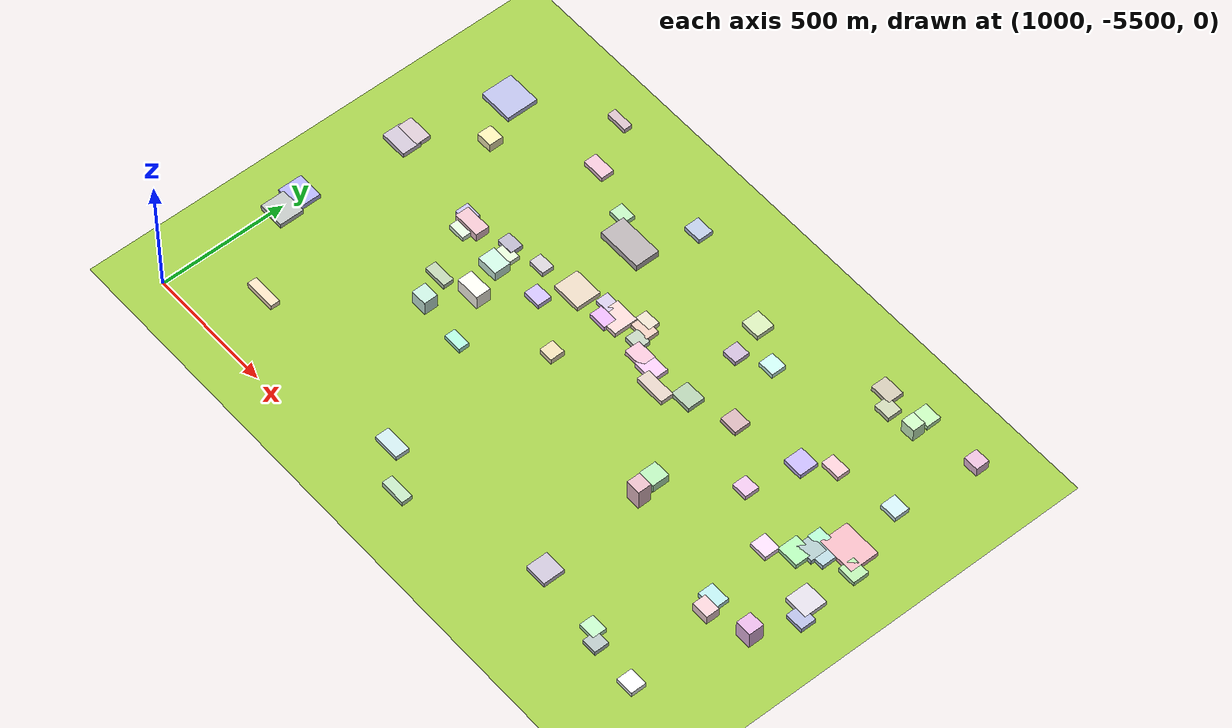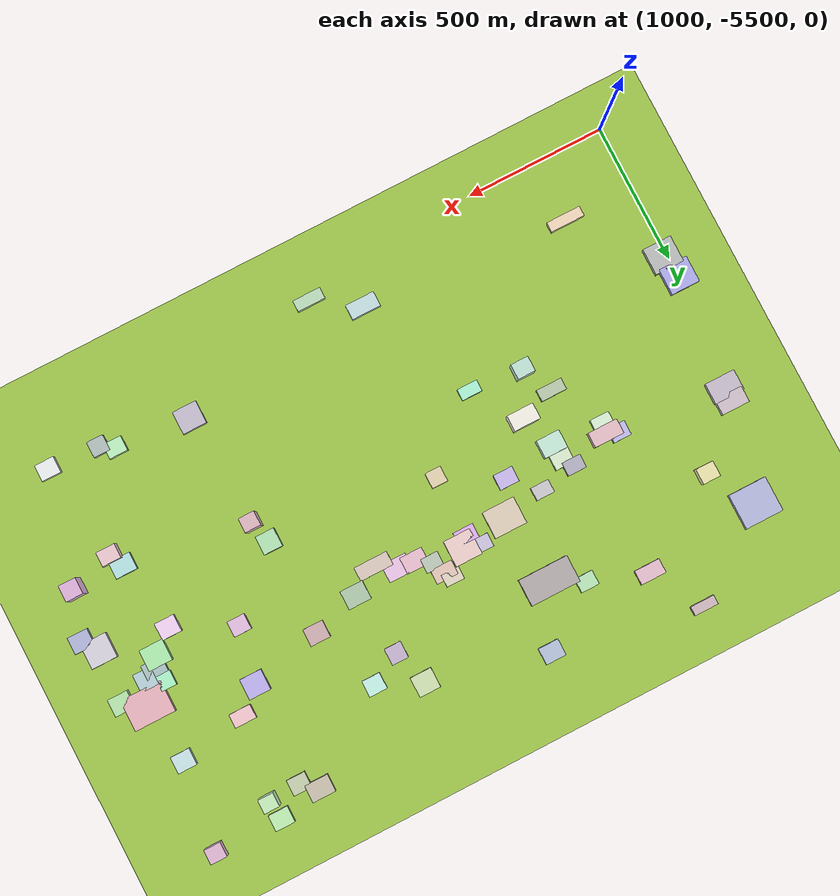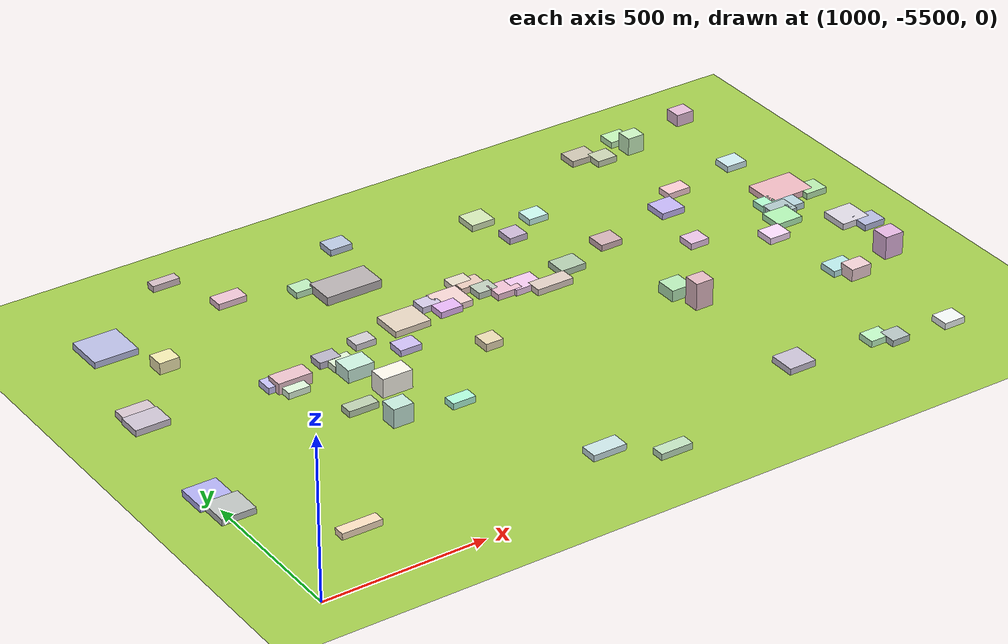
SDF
<sdf version="1.9">
 <world name="city_map">
  <model name="ground_plane">
   <static>1</static>
   <link name="link">
    <collision name="collision">
     <geometry><plane><normal>0 0 1</normal><size>11000 11000</size></plane></geometry>
    </collision>
    <visual name="visual">
     <geometry><plane><normal>0 0 1</normal><size>11000 11000</size></plane></geometry>
     <material>
      <ambient>0.551 0.712 0.210 1</ambient>
      <diffuse>0.651 0.812 0.310 1</diffuse>
      <specular>0.1 0.1 0.05 1</specular>
     </material>
    </visual>
   </link>
  </model>
  <model name="building_3074644">
   <static>1</static>
   <pose>1866.088147392062 -4229.071200356766 13.5 0 0 0</pose>
   <link name="link">
    <collision name="collision">
     <geometry><box><size>180.88419674145865 96.12600000022553 27.0</size></box></geometry>
    </collision>
    <visual name="visual">
     <cast_shadows>false</cast_shadows>
     <geometry><box><size>180.88419674145865 96.12600000022553 27.0</size></box></geometry>
     <material>
      <ambient>0.628 0.601 0.607 1</ambient>
      <diffuse>0.728 0.701 0.707 1</diffuse>
      <specular>0.218 0.210 0.212 1</specular>
      <emissive>0.01 0.01 0.01 1</emissive>
     </material>
    </visual>
   </link>
  </model>
  <model name="building_479301349">
   <static>1</static>
   <pose>1135.572943275845 -4140.6855739843895 10.0 0 0 0</pose>
   <link name="link">
    <collision name="collision">
     <geometry><box><size>137.7940669771865 125.66309999994729 20</size></box></geometry>
    </collision>
    <visual name="visual">
     <cast_shadows>false</cast_shadows>
     <geometry><box><size>137.7940669771865 125.66309999994729 20</size></box></geometry>
     <material>
      <ambient>0.638 0.654 0.805 1</ambient>
      <diffuse>0.738 0.754 0.905 1</diffuse>
      <specular>0.221 0.226 0.272 1</specular>
      <emissive>0.01 0.01 0.01 1</emissive>
     </material>
    </visual>
   </link>
  </model>
  <model name="building_490658657">
   <static>1</static>
   <pose>3232.6246014646044 -4475.49496386256 10.0 0 0 0</pose>
   <link name="link">
    <collision name="collision">
     <geometry><box><size>149.03969999944877 113.08049592594506 20</size></box></geometry>
    </collision>
    <visual name="visual">
     <cast_shadows>false</cast_shadows>
     <geometry><box><size>149.03969999944877 113.08049592594506 20</size></box></geometry>
     <material>
      <ambient>0.848 0.636 0.672 1</ambient>
      <diffuse>0.948 0.736 0.772 1</diffuse>
      <specular>0.284 0.221 0.232 1</specular>
      <emissive>0.01 0.01 0.01 1</emissive>
     </material>
    </visual>
   </link>
  </model>
  <model name="building_277905503">
   <static>1</static>
   <pose>1900.3464420012228 -4482.896282417415 10.0 0 0 0</pose>
   <link name="link">
    <collision name="collision">
     <geometry><box><size>117.51556072879339 97.25819999925989 20</size></box></geometry>
    </collision>
    <visual name="visual">
     <cast_shadows>false</cast_shadows>
     <geometry><box><size>117.51556072879339 97.25819999925989 20</size></box></geometry>
     <material>
      <ambient>0.811 0.746 0.664 1</ambient>
      <diffuse>0.911 0.846 0.764 1</diffuse>
      <specular>0.273 0.254 0.229 1</specular>
      <emissive>0.01 0.01 0.01 1</emissive>
     </material>
    </visual>
   </link>
  </model>
  <model name="building_653566271">
   <static>1</static>
   <pose>1016.9124808766882 -5017.951752600941 10.0 0 0 0</pose>
   <link name="link">
    <collision name="collision">
     <geometry><box><size>104.48628164673559 96.14819999969626 20</size></box></geometry>
    </collision>
    <visual name="visual">
     <cast_shadows>false</cast_shadows>
     <geometry><box><size>104.48628164673559 96.14819999969626 20</size></box></geometry>
     <material>
      <ambient>0.658 0.673 0.667 1</ambient>
      <diffuse>0.758 0.773 0.767 1</diffuse>
      <specular>0.227 0.232 0.230 1</specular>
      <emissive>0.01 0.01 0.01 1</emissive>
     </material>
    </visual>
   </link>
  </model>
  <model name="building_861340770">
   <static>1</static>
   <pose>1001.464659267023 -4933.168356782612 10.0 0 0 0</pose>
   <link name="link">
    <collision name="collision">
     <geometry><box><size>103.7675187631475 95.23800000010141 20</size></box></geometry>
    </collision>
    <visual name="visual">
     <cast_shadows>false</cast_shadows>
     <geometry><box><size>103.7675187631475 95.23800000010141 20</size></box></geometry>
     <material>
      <ambient>0.615 0.606 0.865 1</ambient>
      <diffuse>0.715 0.706 0.965 1</diffuse>
      <specular>0.215 0.212 0.290 1</specular>
      <emissive>0.01 0.01 0.01 1</emissive>
     </material>
    </visual>
   </link>
  </model>
  <model name="building_101044742">
   <static>1</static>
   <pose>2069.387215997498 -4458.50390171914 10.0 0 0 0</pose>
   <link name="link">
    <collision name="collision">
     <geometry><box><size>97.68018994456575 94.08360000001892 20</size></box></geometry>
    </collision>
    <visual name="visual">
     <cast_shadows>false</cast_shadows>
     <geometry><box><size>97.68018994456575 94.08360000001892 20</size></box></geometry>
     <material>
      <ambient>0.872 0.749 0.739 1</ambient>
      <diffuse>0.972 0.849 0.839 1</diffuse>
      <specular>0.292 0.255 0.252 1</specular>
      <emissive>0.01 0.01 0.01 1</emissive>
     </material>
    </visual>
   </link>
  </model>
  <model name="building_215013281">
   <static>1</static>
   <pose>3295.43656945974 -4711.386492642661 10.0 0 0 0</pose>
   <link name="link">
    <collision name="collision">
     <geometry><box><size>93.51750000050174 89.92350707022587 20</size></box></geometry>
    </collision>
    <visual name="visual">
     <cast_shadows>false</cast_shadows>
     <geometry><box><size>93.51750000050174 89.92350707022587 20</size></box></geometry>
     <material>
      <ambient>0.781 0.763 0.804 1</ambient>
      <diffuse>0.881 0.863 0.904 1</diffuse>
      <specular>0.264 0.259 0.271 1</specular>
      <emissive>0.01 0.01 0.01 1</emissive>
     </material>
    </visual>
   </link>
  </model>
  <model name="building_338604163">
   <static>1</static>
   <pose>1043.9145674628246 -4530.759485914879 10.0 0 0 0</pose>
   <link name="link">
    <collision name="collision">
     <geometry><box><size>108.42413395670975 75.86850000010514 20</size></box></geometry>
    </collision>
    <visual name="visual">
     <cast_shadows>false</cast_shadows>
     <geometry><box><size>108.42413395670975 75.86850000010514 20</size></box></geometry>
     <material>
      <ambient>0.713 0.673 0.735 1</ambient>
      <diffuse>0.813 0.773 0.835 1</diffuse>
      <specular>0.244 0.232 0.251 1</specular>
      <emissive>0.01 0.01 0.01 1</emissive>
     </material>
    </visual>
   </link>
  </model>
  <model name="building_111936358">
   <static>1</static>
   <pose>2677.9411171999736 -5264.49798214684 10.0 0 0 0</pose>
   <link name="link">
    <collision name="collision">
     <geometry><box><size>86.8710429273043 82.78379999968166 20</size></box></geometry>
    </collision>
    <visual name="visual">
     <cast_shadows>false</cast_shadows>
     <geometry><box><size>86.8710429273043 82.78379999968166 20</size></box></geometry>
     <material>
      <ambient>0.703 0.672 0.747 1</ambient>
      <diffuse>0.803 0.772 0.847 1</diffuse>
      <specular>0.241 0.232 0.254 1</specular>
      <emissive>0.01 0.01 0.01 1</emissive>
     </material>
    </visual>
   </link>
  </model>
  <model name="building_47612527">
   <static>1</static>
   <pose>3134.5823011906564 -4611.947898223331 10.0 0 0 0</pose>
   <link name="link">
    <collision name="collision">
     <geometry><box><size>86.14978565637065 76.82310000021886 20</size></box></geometry>
    </collision>
    <visual name="visual">
     <cast_shadows>false</cast_shadows>
     <geometry><box><size>86.14978565637065 76.82310000021886 20</size></box></geometry>
     <material>
      <ambient>0.610 0.868 0.621 1</ambient>
      <diffuse>0.710 0.968 0.721 1</diffuse>
      <specular>0.213 0.291 0.216 1</specular>
      <emissive>0.01 0.01 0.01 1</emissive>
     </material>
    </visual>
   </link>
  </model>
  <model name="building_841915670">
   <static>1</static>
   <pose>2360.7715208454733 -4540.373196209656 10.0 0 0 0</pose>
   <link name="link">
    <collision name="collision">
     <geometry><box><size>121.28925938017044 50.28300000002872 20</size></box></geometry>
    </collision>
    <visual name="visual">
     <cast_shadows>false</cast_shadows>
     <geometry><box><size>121.28925938017044 50.28300000002872 20</size></box></geometry>
     <material>
      <ambient>0.790 0.722 0.679 1</ambient>
      <diffuse>0.890 0.822 0.779 1</diffuse>
      <specular>0.267 0.247 0.234 1</specular>
      <emissive>0.01 0.01 0.01 1</emissive>
     </material>
    </visual>
   </link>
  </model>
  <model name="building_69044538">
   <static>1</static>
   <pose>1043.938606158087 -4479.080646446103 10.0 0 0 0</pose>
   <link name="link">
    <collision name="collision">
     <geometry><box><size>100.69553046183466 58.82999999974459 20</size></box></geometry>
    </collision>
    <visual name="visual">
     <cast_shadows>false</cast_shadows>
     <geometry><box><size>100.69553046183466 58.82999999974459 20</size></box></geometry>
     <material>
      <ambient>0.752 0.688 0.728 1</ambient>
      <diffuse>0.852 0.788 0.828 1</diffuse>
      <specular>0.256 0.236 0.248 1</specular>
      <emissive>0.01 0.01 0.01 1</emissive>
     </material>
    </visual>
   </link>
  </model>
  <model name="building_19470867">
   <static>1</static>
   <pose>2292.76424092682 -4499.317952024354 10.0 0 0 0</pose>
   <link name="link">
    <collision name="collision">
     <geometry><box><size>89.30472285586916 65.97840000046773 20</size></box></geometry>
    </collision>
    <visual name="visual">
     <cast_shadows>false</cast_shadows>
     <geometry><box><size>89.30472285586916 65.97840000046773 20</size></box></geometry>
     <material>
      <ambient>0.868 0.707 0.853 1</ambient>
      <diffuse>0.968 0.807 0.953 1</diffuse>
      <specular>0.290 0.242 0.286 1</specular>
      <emissive>0.01 0.01 0.01 1</emissive>
     </material>
    </visual>
   </link>
  </model>
  <model name="building_118880822">
   <static>1</static>
   <pose>2886.9391139703544 -4374.32553192752 10.0 0 0 0</pose>
   <link name="link">
    <collision name="collision">
     <geometry><box><size>78.8876999998962 74.64642814235285 20</size></box></geometry>
    </collision>
    <visual name="visual">
     <cast_shadows>false</cast_shadows>
     <geometry><box><size>78.8876999998962 74.64642814235285 20</size></box></geometry>
     <material>
      <ambient>0.680 0.625 0.873 1</ambient>
      <diffuse>0.780 0.725 0.973 1</diffuse>
      <specular>0.234 0.218 0.292 1</specular>
      <emissive>0.01 0.01 0.01 1</emissive>
     </material>
    </visual>
   </link>
  </model>
  <model name="building_510720172">
   <static>1</static>
   <pose>1471.2385070311298 -4576.425966990595 17.415212416412057 0 0 0</pose>
   <link name="link">
    <collision name="collision">
     <geometry><box><size>107.59330920464436 53.95709999958598 34.830424832824114</size></box></geometry>
    </collision>
    <visual name="visual">
     <cast_shadows>false</cast_shadows>
     <geometry><box><size>107.59330920464436 53.95709999958598 34.830424832824114</size></box></geometry>
     <material>
      <ambient>0.837 0.676 0.713 1</ambient>
      <diffuse>0.937 0.776 0.813 1</diffuse>
      <specular>0.281 0.233 0.244 1</specular>
      <emissive>0.01 0.01 0.01 1</emissive>
     </material>
    </visual>
   </link>
  </model>
  <model name="building_968774318">
   <static>1</static>
   <pose>1990.6131313783621 -5332.40989320171 10.0 0 0 0</pose>
   <link name="link">
    <collision name="collision">
     <geometry><box><size>105.58320000032495 53.82194809555857 20</size></box></geometry>
    </collision>
    <visual name="visual">
     <cast_shadows>false</cast_shadows>
     <geometry><box><size>105.58320000032495 53.82194809555857 20</size></box></geometry>
     <material>
      <ambient>0.708 0.809 0.820 1</ambient>
      <diffuse>0.808 0.909 0.920 1</diffuse>
      <specular>0.242 0.273 0.276 1</specular>
      <emissive>0.01 0.01 0.01 1</emissive>
     </material>
    </visual>
   </link>
  </model>
  <model name="building_391439528">
   <static>1</static>
   <pose>2457.255876913421 -4482.992483965189 10.0 0 0 0</pose>
   <link name="link">
    <collision name="collision">
     <geometry><box><size>83.19309299162909 67.65450000033724 20</size></box></geometry>
    </collision>
    <visual name="visual">
     <cast_shadows>false</cast_shadows>
     <geometry><box><size>83.19309299162909 67.65450000033724 20</size></box></geometry>
     <material>
      <ambient>0.614 0.715 0.601 1</ambient>
      <diffuse>0.714 0.815 0.701 1</diffuse>
      <specular>0.214 0.245 0.210 1</specular>
      <emissive>0.01 0.01 0.01 1</emissive>
     </material>
    </visual>
   </link>
  </model>
  <model name="building_243352671">
   <static>1</static>
   <pose>2385.1195329002967 -4121.089500346192 10.0 0 0 0</pose>
   <link name="link">
    <collision name="collision">
     <geometry><box><size>77.17074294413206 71.86140000059993 20</size></box></geometry>
    </collision>
    <visual name="visual">
     <cast_shadows>false</cast_shadows>
     <geometry><box><size>77.17074294413206 71.86140000059993 20</size></box></geometry>
     <material>
      <ambient>0.746 0.821 0.627 1</ambient>
      <diffuse>0.846 0.921 0.727 1</diffuse>
      <specular>0.254 0.276 0.218 1</specular>
      <emissive>0.01 0.01 0.01 1</emissive>
     </material>
    </visual>
   </link>
  </model>
  <model name="building_554101006">
   <static>1</static>
   <pose>1648.1346767113646 -4626.845477612537 20.325000000000003 0 0 0</pose>
   <link name="link">
    <collision name="collision">
     <geometry><box><size>84.32458372699777 65.7342000007688 40.650000000000006</size></box></geometry>
    </collision>
    <visual name="visual">
     <cast_shadows>false</cast_shadows>
     <geometry><box><size>84.32458372699777 65.7342000007688 40.650000000000006</size></box></geometry>
     <material>
      <ambient>0.711 0.856 0.784 1</ambient>
      <diffuse>0.811 0.956 0.884 1</diffuse>
      <specular>0.243 0.287 0.265 1</specular>
      <emissive>0.01 0.01 0.01 1</emissive>
     </material>
    </visual>
   </link>
  </model>
  <model name="building_132420360">
   <static>1</static>
   <pose>1691.905685622156 -4748.685832882348 30.0 0 0 0</pose>
   <link name="link">
    <collision name="collision">
     <geometry><box><size>96.27282958749574 57.497999999952754 60.0</size></box></geometry>
    </collision>
    <visual name="visual">
     <cast_shadows>false</cast_shadows>
     <geometry><box><size>96.27282958749574 57.497999999952754 60.0</size></box></geometry>
     <material>
      <ambient>0.899 0.884 0.838 1</ambient>
      <diffuse>0.999 0.984 0.938 1</diffuse>
      <specular>0.300 0.295 0.281 1</specular>
      <emissive>0.01 0.01 0.01 1</emissive>
     </material>
    </visual>
   </link>
  </model>
  <model name="building_311629080">
   <static>1</static>
   <pose>2852.0158420050025 -3973.5271886517157 10.0 0 0 0</pose>
   <link name="link">
    <collision name="collision">
     <geometry><box><size>84.35387475722528 62.12670000041243 20</size></box></geometry>
    </collision>
    <visual name="visual">
     <cast_shadows>false</cast_shadows>
     <geometry><box><size>84.35387475722528 62.12670000041243 20</size></box></geometry>
     <material>
      <ambient>0.717 0.684 0.610 1</ambient>
      <diffuse>0.817 0.784 0.710 1</diffuse>
      <specular>0.245 0.235 0.213 1</specular>
      <emissive>0.01 0.01 0.01 1</emissive>
     </material>
    </visual>
   </link>
  </model>
  <model name="building_730643561">
   <static>1</static>
   <pose>3157.9216972173426 -4569.913355949054 10.0 0 0 0</pose>
   <link name="link">
    <collision name="collision">
     <geometry><box><size>76.00158625826926 65.46780000002173 20</size></box></geometry>
    </collision>
    <visual name="visual">
     <cast_shadows>false</cast_shadows>
     <geometry><box><size>76.00158625826926 65.46780000002173 20</size></box></geometry>
     <material>
      <ambient>0.600 0.691 0.696 1</ambient>
      <diffuse>0.700 0.791 0.796 1</diffuse>
      <specular>0.210 0.237 0.239 1</specular>
      <emissive>0.01 0.01 0.01 1</emissive>
     </material>
    </visual>
   </link>
  </model>
  <model name="building_420092099">
   <static>1</static>
   <pose>2231.8711973790178 -4494.253023117738 10.0 0 0 0</pose>
   <link name="link">
    <collision name="collision">
     <geometry><box><size>81.658812134369 60.32849999990475 20</size></box></geometry>
    </collision>
    <visual name="visual">
     <cast_shadows>false</cast_shadows>
     <geometry><box><size>81.658812134369 60.32849999990475 20</size></box></geometry>
     <material>
      <ambient>0.857 0.677 0.751 1</ambient>
      <diffuse>0.957 0.777 0.851 1</diffuse>
      <specular>0.287 0.233 0.255 1</specular>
      <emissive>0.01 0.01 0.01 1</emissive>
     </material>
    </visual>
   </link>
  </model>
  <model name="building_659149089">
   <static>1</static>
   <pose>3097.837433289743 -4926.1856806663 10.0 0 0 0</pose>
   <link name="link">
    <collision name="collision">
     <geometry><box><size>77.55570000010437 60.85559133097398 20</size></box></geometry>
    </collision>
    <visual name="visual">
     <cast_shadows>false</cast_shadows>
     <geometry><box><size>77.55570000010437 60.85559133097398 20</size></box></geometry>
     <material>
      <ambient>0.644 0.826 0.829 1</ambient>
      <diffuse>0.744 0.926 0.929 1</diffuse>
      <specular>0.223 0.278 0.279 1</specular>
      <emissive>0.01 0.01 0.01 1</emissive>
     </material>
    </visual>
   </link>
  </model>
  <model name="building_482734391">
   <static>1</static>
   <pose>1554.5210159024052 -4100.492420400765 10.0 0 0 0</pose>
   <link name="link">
    <collision name="collision">
     <geometry><box><size>91.57500000067387 51.15850091476697 20</size></box></geometry>
    </collision>
    <visual name="visual">
     <cast_shadows>false</cast_shadows>
     <geometry><box><size>91.57500000067387 51.15850091476697 20</size></box></geometry>
     <material>
      <ambient>0.840 0.680 0.745 1</ambient>
      <diffuse>0.940 0.780 0.845 1</diffuse>
      <specular>0.282 0.234 0.254 1</specular>
      <emissive>0.01 0.01 0.01 1</emissive>
     </material>
    </visual>
   </link>
  </model>
  <model name="building_265668981">
   <static>1</static>
   <pose>2630.128277296062 -4773.2599829497 18.0 0 0 0</pose>
   <link name="link">
    <collision name="collision">
     <geometry><box><size>68.05385821201318 67.19940000053981 36.0</size></box></geometry>
    </collision>
    <visual name="visual">
     <cast_shadows>false</cast_shadows>
     <geometry><box><size>68.05385821201318 67.19940000053981 36.0</size></box></geometry>
     <material>
      <ambient>0.632 0.836 0.636 1</ambient>
      <diffuse>0.732 0.936 0.736 1</diffuse>
      <specular>0.220 0.281 0.221 1</specular>
      <emissive>0.01 0.01 0.01 1</emissive>
     </material>
    </visual>
   </link>
  </model>
  <model name="building_381360438">
   <static>1</static>
   <pose>3307.435906090256 -4522.212969222888 10.0 0 0 0</pose>
   <link name="link">
    <collision name="collision">
     <geometry><box><size>72.53849999983686 62.365017095607435 20</size></box></geometry>
    </collision>
    <visual name="visual">
     <cast_shadows>false</cast_shadows>
     <geometry><box><size>72.53849999983686 62.365017095607435 20</size></box></geometry>
     <material>
      <ambient>0.640 0.835 0.600 1</ambient>
      <diffuse>0.740 0.935 0.700 1</diffuse>
      <specular>0.222 0.280 0.210 1</specular>
      <emissive>0.01 0.01 0.01 1</emissive>
     </material>
    </visual>
   </link>
  </model>
  <model name="building_543810354">
   <static>1</static>
   <pose>2629.6449284395785 -4430.743238877381 10.0 0 0 0</pose>
   <link name="link">
    <collision name="collision">
     <geometry><box><size>72.61246080172174 62.082299999893564 20</size></box></geometry>
    </collision>
    <visual name="visual">
     <cast_shadows>false</cast_shadows>
     <geometry><box><size>72.61246080172174 62.082299999893564 20</size></box></geometry>
     <material>
      <ambient>0.741 0.611 0.632 1</ambient>
      <diffuse>0.841 0.711 0.732 1</diffuse>
      <specular>0.252 0.213 0.220 1</specular>
      <emissive>0.01 0.01 0.01 1</emissive>
     </material>
    </visual>
   </link>
  </model>
  <model name="building_583760350">
   <static>1</static>
   <pose>1250.8861678503936 -5278.626864032471 10.0 0 0 0</pose>
   <link name="link">
    <collision name="collision">
     <geometry><box><size>123.87686836843272 35.94179999964098 20</size></box></geometry>
    </collision>
    <visual name="visual">
     <cast_shadows>false</cast_shadows>
     <geometry><box><size>123.87686836843272 35.94179999964098 20</size></box></geometry>
     <material>
      <ambient>0.890 0.785 0.670 1</ambient>
      <diffuse>0.990 0.885 0.770 1</diffuse>
      <specular>0.297 0.266 0.231 1</specular>
      <emissive>0.01 0.01 0.01 1</emissive>
     </material>
    </visual>
   </link>
  </model>
  <model name="building_637529119">
   <static>1</static>
   <pose>3057.2818006383513 -4674.876565103363 10.0 0 0 0</pose>
   <link name="link">
    <collision name="collision">
     <geometry><box><size>71.1692481530093 61.44959999959809 20</size></box></geometry>
    </collision>
    <visual name="visual">
     <cast_shadows>false</cast_shadows>
     <geometry><box><size>71.1692481530093 61.44959999959809 20</size></box></geometry>
     <material>
      <ambient>0.891 0.766 0.898 1</ambient>
      <diffuse>0.991 0.866 0.998 1</diffuse>
      <specular>0.297 0.260 0.299 1</specular>
      <emissive>0.01 0.01 0.01 1</emissive>
     </material>
    </visual>
   </link>
  </model>
  <model name="building_647127252">
   <static>1</static>
   <pose>3333.6110262444718 -4766.048065331816 10.0 0 0 0</pose>
   <link name="link">
    <collision name="collision">
     <geometry><box><size>71.92799999980082 60.66420058328814 20</size></box></geometry>
    </collision>
    <visual name="visual">
     <cast_shadows>false</cast_shadows>
     <geometry><box><size>71.92799999980082 60.66420058328814 20</size></box></geometry>
     <material>
      <ambient>0.623 0.646 0.790 1</ambient>
      <diffuse>0.723 0.746 0.890 1</diffuse>
      <specular>0.217 0.224 0.267 1</specular>
      <emissive>0.01 0.01 0.01 1</emissive>
     </material>
    </visual>
   </link>
  </model>
  <model name="building_842911479">
   <static>1</static>
   <pose>1966.5748177186485 -4016.8644489789717 10.0 0 0 0</pose>
   <link name="link">
    <collision name="collision">
     <geometry><box><size>73.12005241655572 59.07419999944352 20</size></box></geometry>
    </collision>
    <visual name="visual">
     <cast_shadows>false</cast_shadows>
     <geometry><box><size>73.12005241655572 59.07419999944352 20</size></box></geometry>
     <material>
      <ambient>0.639 0.692 0.789 1</ambient>
      <diffuse>0.739 0.792 0.889 1</diffuse>
      <specular>0.222 0.238 0.267 1</specular>
      <emissive>0.01 0.01 0.01 1</emissive>
     </material>
    </visual>
   </link>
  </model>
  <model name="building_662466051">
   <static>1</static>
   <pose>3200.4389041389036 -4555.392056676835 10.0 0 0 0</pose>
   <link name="link">
    <collision name="collision">
     <geometry><box><size>66.25263030990324 65.00160000009458 20</size></box></geometry>
    </collision>
    <visual name="visual">
     <cast_shadows>false</cast_shadows>
     <geometry><box><size>66.25263030990324 65.00160000009458 20</size></box></geometry>
     <material>
      <ambient>0.635 0.751 0.780 1</ambient>
      <diffuse>0.735 0.851 0.880 1</diffuse>
      <specular>0.220 0.255 0.264 1</specular>
      <emissive>0.01 0.01 0.01 1</emissive>
     </material>
    </visual>
   </link>
  </model>
  <model name="building_824680343">
   <static>1</static>
   <pose>2141.909100302437 -5434.111228064472 10.0 0 0 0</pose>
   <link name="link">
    <collision name="collision">
     <geometry><box><size>101.90909999997899 40.989293417867 20</size></box></geometry>
    </collision>
    <visual name="visual">
     <cast_shadows>false</cast_shadows>
     <geometry><box><size>101.90909999997899 40.989293417867 20</size></box></geometry>
     <material>
      <ambient>0.670 0.799 0.667 1</ambient>
      <diffuse>0.770 0.899 0.767 1</diffuse>
      <specular>0.231 0.270 0.230 1</specular>
      <emissive>0.01 0.01 0.01 1</emissive>
     </material>
    </visual>
   </link>
  </model>
  <model name="building_962041726">
   <static>1</static>
   <pose>3174.863364612197 -5328.7044016975415 10.0 0 0 0</pose>
   <link name="link">
    <collision name="collision">
     <geometry><box><size>70.10760000061111 58.9674378286742 20</size></box></geometry>
    </collision>
    <visual name="visual">
     <cast_shadows>false</cast_shadows>
     <geometry><box><size>70.10760000061111 58.9674378286742 20</size></box></geometry>
     <material>
      <ambient>0.863 0.884 0.880 1</ambient>
      <diffuse>0.963 0.984 0.980 1</diffuse>
      <specular>0.289 0.295 0.294 1</specular>
      <emissive>0.01 0.01 0.01 1</emissive>
     </material>
    </visual>
   </link>
  </model>
  <model name="building_563600904">
   <static>1</static>
   <pose>3209.5746866970303 -4260.125445589494 10.0 0 0 0</pose>
   <link name="link">
    <collision name="collision">
     <geometry><box><size>68.91990000013948 59.96847681756186 20</size></box></geometry>
    </collision>
    <visual name="visual">
     <cast_shadows>false</cast_shadows>
     <geometry><box><size>68.91990000013948 59.96847681756186 20</size></box></geometry>
     <material>
      <ambient>0.723 0.835 0.849 1</ambient>
      <diffuse>0.823 0.935 0.949 1</diffuse>
      <specular>0.247 0.280 0.285 1</specular>
      <emissive>0.01 0.01 0.01 1</emissive>
     </material>
    </visual>
   </link>
  </model>
  <model name="building_558011926">
   <static>1</static>
   <pose>3009.2891643227345 -3944.1038160683397 10.0 0 0 0</pose>
   <link name="link">
    <collision name="collision">
     <geometry><box><size>70.66530383592838 57.919800000149735 20</size></box></geometry>
    </collision>
    <visual name="visual">
     <cast_shadows>false</cast_shadows>
     <geometry><box><size>70.66530383592838 57.919800000149735 20</size></box></geometry>
     <material>
      <ambient>0.679 0.873 0.636 1</ambient>
      <diffuse>0.779 0.973 0.736 1</diffuse>
      <specular>0.234 0.292 0.221 1</specular>
      <emissive>0.01 0.01 0.01 1</emissive>
     </material>
    </visual>
   </link>
  </model>
  <model name="building_250790086">
   <static>1</static>
   <pose>2161.6518465300946 -4415.088919260079 10.0 0 0 0</pose>
   <link name="link">
    <collision name="collision">
     <geometry><box><size>78.29074168689614 51.20430000054199 20</size></box></geometry>
    </collision>
    <visual name="visual">
     <cast_shadows>false</cast_shadows>
     <geometry><box><size>78.29074168689614 51.20430000054199 20</size></box></geometry>
     <material>
      <ambient>0.833 0.710 0.657 1</ambient>
      <diffuse>0.933 0.810 0.757 1</diffuse>
      <specular>0.280 0.243 0.227 1</specular>
      <emissive>0.01 0.01 0.01 1</emissive>
     </material>
    </visual>
   </link>
  </model>
  <model name="building_266854670">
   <static>1</static>
   <pose>1561.97870912233 -4789.354068100819 10.0 0 0 0</pose>
   <link name="link">
    <collision name="collision">
     <geometry><box><size>93.12326890808018 41.81369999964346 20</size></box></geometry>
    </collision>
    <visual name="visual">
     <cast_shadows>false</cast_shadows>
     <geometry><box><size>93.12326890808018 41.81369999964346 20</size></box></geometry>
     <material>
      <ambient>0.652 0.727 0.606 1</ambient>
      <diffuse>0.752 0.827 0.706 1</diffuse>
      <specular>0.226 0.248 0.212 1</specular>
      <emissive>0.01 0.01 0.01 1</emissive>
     </material>
    </visual>
   </link>
  </model>
  <model name="building_671824227">
   <static>1</static>
   <pose>1834.273610148586 -4596.557264569908 10.0 0 0 0</pose>
   <link name="link">
    <collision name="collision">
     <geometry><box><size>70.18113579243324 55.22249999938822 20</size></box></geometry>
    </collision>
    <visual name="visual">
     <cast_shadows>false</cast_shadows>
     <geometry><box><size>70.18113579243324 55.22249999938822 20</size></box></geometry>
     <material>
      <ambient>0.720 0.661 0.867 1</ambient>
      <diffuse>0.820 0.761 0.967 1</diffuse>
      <specular>0.246 0.228 0.290 1</specular>
      <emissive>0.01 0.01 0.01 1</emissive>
     </material>
    </visual>
   </link>
  </model>
  <model name="building_72210525">
   <static>1</static>
   <pose>2970.6933247648976 -4301.043180938503 10.0 0 0 0</pose>
   <link name="link">
    <collision name="collision">
     <geometry><box><size>77.99970000056078 49.233943437829 20</size></box></geometry>
    </collision>
    <visual name="visual">
     <cast_shadows>false</cast_shadows>
     <geometry><box><size>77.99970000056078 49.233943437829 20</size></box></geometry>
     <material>
      <ambient>0.893 0.712 0.741 1</ambient>
      <diffuse>0.993 0.812 0.841 1</diffuse>
      <specular>0.298 0.244 0.252 1</specular>
      <emissive>0.01 0.01 0.01 1</emissive>
     </material>
    </visual>
   </link>
  </model>
  <model name="building_533445012">
   <static>1</static>
   <pose>2537.737649159435 -4191.55824132405 10.0 0 0 0</pose>
   <link name="link">
    <collision name="collision">
     <geometry><box><size>65.47890000015144 58.304667797474615 20</size></box></geometry>
    </collision>
    <visual name="visual">
     <cast_shadows>false</cast_shadows>
     <geometry><box><size>65.47890000015144 58.304667797474615 20</size></box></geometry>
     <material>
      <ambient>0.703 0.884 0.843 1</ambient>
      <diffuse>0.803 0.984 0.943 1</diffuse>
      <specular>0.241 0.295 0.283 1</specular>
      <emissive>0.01 0.01 0.01 1</emissive>
     </material>
    </visual>
   </link>
  </model>
  <model name="building_163787070">
   <static>1</static>
   <pose>2906.441369588136 -4018.6829452508814 10.0 0 0 0</pose>
   <link name="link">
    <collision name="collision">
     <geometry><box><size>66.93491719791169 56.698800000077654 20</size></box></geometry>
    </collision>
    <visual name="visual">
     <cast_shadows>false</cast_shadows>
     <geometry><box><size>66.93491719791169 56.698800000077654 20</size></box></geometry>
     <material>
      <ambient>0.704 0.741 0.614 1</ambient>
      <diffuse>0.804 0.841 0.714 1</diffuse>
      <specular>0.241 0.252 0.214 1</specular>
      <emissive>0.01 0.01 0.01 1</emissive>
     </material>
    </visual>
   </link>
  </model>
  <model name="building_734614322">
   <static>1</static>
   <pose>3275.2552547473365 -4929.345902013504 36.63241451019873 0 0 0</pose>
   <link name="link">
    <collision name="collision">
     <geometry><box><size>62.41068081981233 58.88549999960446 73.26482902039746</size></box></geometry>
    </collision>
    <visual name="visual">
     <cast_shadows>false</cast_shadows>
     <geometry><box><size>62.41068081981233 58.88549999960446 73.26482902039746</size></box></geometry>
     <material>
      <ambient>0.804 0.623 0.796 1</ambient>
      <diffuse>0.904 0.723 0.896 1</diffuse>
      <specular>0.271 0.217 0.269 1</specular>
      <emissive>0.01 0.01 0.01 1</emissive>
     </material>
    </visual>
   </link>
  </model>
  <model name="building_964554646">
   <static>1</static>
   <pose>1462.335080151999 -4612.123514305834 10.0 0 0 0</pose>
   <link name="link">
    <collision name="collision">
     <geometry><box><size>69.28212229482347 52.82489999976292 20</size></box></geometry>
    </collision>
    <visual name="visual">
     <cast_shadows>false</cast_shadows>
     <geometry><box><size>69.28212229482347 52.82489999976292 20</size></box></geometry>
     <material>
      <ambient>0.788 0.882 0.773 1</ambient>
      <diffuse>0.888 0.982 0.873 1</diffuse>
      <specular>0.266 0.295 0.262 1</specular>
      <emissive>0.01 0.01 0.01 1</emissive>
     </material>
    </visual>
   </link>
  </model>
  <model name="building_455686644">
   <static>1</static>
   <pose>1639.0550538170473 -4568.140555016682 10.0 0 0 0</pose>
   <link name="link">
    <collision name="collision">
     <geometry><box><size>70.0726036827812 52.21439999972688 20</size></box></geometry>
    </collision>
    <visual name="visual">
     <cast_shadows>false</cast_shadows>
     <geometry><box><size>70.0726036827812 52.21439999972688 20</size></box></geometry>
     <material>
      <ambient>0.793 0.870 0.747 1</ambient>
      <diffuse>0.893 0.970 0.847 1</diffuse>
      <specular>0.268 0.291 0.254 1</specular>
      <emissive>0.01 0.01 0.01 1</emissive>
     </material>
    </visual>
   </link>
  </model>
  <model name="building_179581662">
   <static>1</static>
   <pose>2040.0262181870428 -4490.976279698339 10.0 0 0 0</pose>
   <link name="link">
    <collision name="collision">
     <geometry><box><size>72.72828965594896 50.14980000004954 20</size></box></geometry>
    </collision>
    <visual name="visual">
     <cast_shadows>false</cast_shadows>
     <geometry><box><size>72.72828965594896 50.14980000004954 20</size></box></geometry>
     <material>
      <ambient>0.820 0.627 0.878 1</ambient>
      <diffuse>0.920 0.727 0.978 1</diffuse>
      <specular>0.276 0.218 0.294 1</specular>
      <emissive>0.01 0.01 0.01 1</emissive>
     </material>
    </visual>
   </link>
  </model>
  <model name="building_666568454">
   <static>1</static>
   <pose>2942.8527981662364 -5289.708002503716 10.0 0 0 0</pose>
   <link name="link">
    <collision name="collision">
     <geometry><box><size>66.2017365213419 54.811800000109656 20</size></box></geometry>
    </collision>
    <visual name="visual">
     <cast_shadows>false</cast_shadows>
     <geometry><box><size>66.2017365213419 54.811800000109656 20</size></box></geometry>
     <material>
      <ambient>0.671 0.887 0.690 1</ambient>
      <diffuse>0.771 0.987 0.790 1</diffuse>
      <specular>0.231 0.296 0.237 1</specular>
      <emissive>0.01 0.01 0.01 1</emissive>
     </material>
    </visual>
   </link>
  </model>
  <model name="building_360752009">
   <static>1</static>
   <pose>2425.9537937903774 -4250.487704747066 10.0 0 0 0</pose>
   <link name="link">
    <collision name="collision">
     <geometry><box><size>60.029257372068024 59.984399999827076 20</size></box></geometry>
    </collision>
    <visual name="visual">
     <cast_shadows>false</cast_shadows>
     <geometry><box><size>60.029257372068024 59.984399999827076 20</size></box></geometry>
     <material>
      <ambient>0.710 0.635 0.748 1</ambient>
      <diffuse>0.810 0.735 0.848 1</diffuse>
      <specular>0.243 0.221 0.254 1</specular>
      <emissive>0.01 0.01 0.01 1</emissive>
     </material>
    </visual>
   </link>
  </model>
  <model name="building_470605666">
   <static>1</static>
   <pose>1232.0420399044879 -4303.494776355029 18.0 0 0 0</pose>
   <link name="link">
    <collision name="collision">
     <geometry><box><size>64.03590000063986 55.81156086590088 36.0</size></box></geometry>
    </collision>
    <visual name="visual">
     <cast_shadows>false</cast_shadows>
     <geometry><box><size>64.03590000063986 55.81156086590088 36.0</size></box></geometry>
     <material>
      <ambient>0.865 0.831 0.612 1</ambient>
      <diffuse>0.965 0.931 0.712 1</diffuse>
      <specular>0.289 0.279 0.214 1</specular>
      <emissive>0.01 0.01 0.01 1</emissive>
     </material>
    </visual>
   </link>
  </model>
  <model name="building_905593460">
   <static>1</static>
   <pose>2844.9857540194557 -4572.270255166728 10.0 0 0 0</pose>
   <link name="link">
    <collision name="collision">
     <geometry><box><size>62.948099999758256 56.45019764589973 20</size></box></geometry>
    </collision>
    <visual name="visual">
     <cast_shadows>false</cast_shadows>
     <geometry><box><size>62.948099999758256 56.45019764589973 20</size></box></geometry>
     <material>
      <ambient>0.830 0.679 0.815 1</ambient>
      <diffuse>0.930 0.779 0.915 1</diffuse>
      <specular>0.279 0.234 0.274 1</specular>
      <emissive>0.01 0.01 0.01 1</emissive>
     </material>
    </visual>
   </link>
  </model>
  <model name="building_36173491">
   <static>1</static>
   <pose>3120.956421776631 -4977.309159712518 19.269474124840087 0 0 0</pose>
   <link name="link">
    <collision name="collision">
     <geometry><box><size>67.95540226273857 51.94799999976851 38.538948249680175</size></box></geometry>
    </collision>
    <visual name="visual">
     <cast_shadows>false</cast_shadows>
     <geometry><box><size>67.95540226273857 51.94799999976851 38.538948249680175</size></box></geometry>
     <material>
      <ambient>0.857 0.724 0.745 1</ambient>
      <diffuse>0.957 0.824 0.845 1</diffuse>
      <specular>0.287 0.247 0.254 1</specular>
      <emissive>0.01 0.01 0.01 1</emissive>
     </material>
    </visual>
   </link>
  </model>
  <model name="building_774430733">
   <static>1</static>
   <pose>1617.5396719621283 -4895.208138526354 30.0 0 0 0</pose>
   <link name="link">
    <collision name="collision">
     <geometry><box><size>64.02610008303525 55.000499999948715 60.0</size></box></geometry>
    </collision>
    <visual name="visual">
     <cast_shadows>false</cast_shadows>
     <geometry><box><size>64.02610008303525 55.000499999948715 60.0</size></box></geometry>
     <material>
      <ambient>0.686 0.828 0.770 1</ambient>
      <diffuse>0.786 0.928 0.870 1</diffuse>
      <specular>0.236 0.278 0.261 1</specular>
      <emissive>0.01 0.01 0.01 1</emissive>
     </material>
    </visual>
   </link>
  </model>
  <model name="building_33868935">
   <static>1</static>
   <pose>2990.97903932112 -5318.926161575656 10.0 0 0 0</pose>
   <link name="link">
    <collision name="collision">
     <geometry><box><size>59.36279999966132 57.43236212442653 20</size></box></geometry>
    </collision>
    <visual name="visual">
     <cast_shadows>false</cast_shadows>
     <geometry><box><size>59.36279999966132 57.43236212442653 20</size></box></geometry>
     <material>
      <ambient>0.625 0.679 0.673 1</ambient>
      <diffuse>0.725 0.779 0.773 1</diffuse>
      <specular>0.217 0.234 0.232 1</specular>
      <emissive>0.01 0.01 0.01 1</emissive>
     </material>
    </visual>
   </link>
  </model>
  <model name="building_349716235">
   <static>1</static>
   <pose>1427.4834897992844 -4560.50239018028 10.0 0 0 0</pose>
   <link name="link">
    <collision name="collision">
     <geometry><box><size>64.56927222198743 52.54739999967484 20</size></box></geometry>
    </collision>
    <visual name="visual">
     <cast_shadows>false</cast_shadows>
     <geometry><box><size>64.56927222198743 52.54739999967484 20</size></box></geometry>
     <material>
      <ambient>0.694 0.675 0.878 1</ambient>
      <diffuse>0.794 0.775 0.978 1</diffuse>
      <specular>0.238 0.232 0.293 1</specular>
      <emissive>0.01 0.01 0.01 1</emissive>
     </material>
    </visual>
   </link>
  </model>
  <model name="building_994383419">
   <static>1</static>
   <pose>1756.3017839942843 -4169.278430805407 10.0 0 0 0</pose>
   <link name="link">
    <collision name="collision">
     <geometry><box><size>65.54444135571653 51.481800000630074 20</size></box></geometry>
    </collision>
    <visual name="visual">
     <cast_shadows>false</cast_shadows>
     <geometry><box><size>65.54444135571653 51.481800000630074 20</size></box></geometry>
     <material>
      <ambient>0.655 0.843 0.658 1</ambient>
      <diffuse>0.755 0.943 0.758 1</diffuse>
      <specular>0.226 0.283 0.227 1</specular>
      <emissive>0.01 0.01 0.01 1</emissive>
     </material>
    </visual>
   </link>
  </model>
  <model name="building_485549779">
   <static>1</static>
   <pose>1613.129342604957 -4531.085401685413 10.5 0 0 0</pose>
   <link name="link">
    <collision name="collision">
     <geometry><box><size>68.00994437711066 49.050899999826925 21.0</size></box></geometry>
    </collision>
    <visual name="visual">
     <cast_shadows>false</cast_shadows>
     <geometry><box><size>68.00994437711066 49.050899999826925 21.0</size></box></geometry>
     <material>
      <ambient>0.636 0.618 0.693 1</ambient>
      <diffuse>0.736 0.718 0.793 1</diffuse>
      <specular>0.221 0.215 0.238 1</specular>
      <emissive>0.01 0.01 0.01 1</emissive>
     </material>
    </visual>
   </link>
  </model>
  <model name="building_148381689">
   <static>1</static>
   <pose>2182.261056795217 -4462.404275106116 10.0 0 0 0</pose>
   <link name="link">
    <collision name="collision">
     <geometry><box><size>63.310626253084635 51.41519999985178 20</size></box></geometry>
    </collision>
    <visual name="visual">
     <cast_shadows>false</cast_shadows>
     <geometry><box><size>63.310626253084635 51.41519999985178 20</size></box></geometry>
     <material>
      <ambient>0.668 0.721 0.653 1</ambient>
      <diffuse>0.768 0.821 0.753 1</diffuse>
      <specular>0.230 0.246 0.226 1</specular>
      <emissive>0.01 0.01 0.01 1</emissive>
     </material>
    </visual>
   </link>
  </model>
  <model name="building_350529763">
   <static>1</static>
   <pose>2039.2391587777513 -4706.612987104134 12.0 0 0 0</pose>
   <link name="link">
    <collision name="collision">
     <geometry><box><size>57.087217571703185 55.844099999553976 24.0</size></box></geometry>
    </collision>
    <visual name="visual">
     <cast_shadows>false</cast_shadows>
     <geometry><box><size>57.087217571703185 55.844099999553976 24.0</size></box></geometry>
     <material>
      <ambient>0.829 0.768 0.620 1</ambient>
      <diffuse>0.929 0.868 0.720 1</diffuse>
      <specular>0.279 0.260 0.216 1</specular>
      <emissive>0.01 0.01 0.01 1</emissive>
     </material>
    </visual>
   </link>
  </model>
  <model name="building_992663000">
   <static>1</static>
   <pose>3249.4853975753263 -3946.572343441043 19.40591474036281 0 0 0</pose>
   <link name="link">
    <collision name="collision">
     <geometry><box><size>59.70109071159177 52.536300000333824 38.81182948072562</size></box></geometry>
    </collision>
    <visual name="visual">
     <cast_shadows>false</cast_shadows>
     <geometry><box><size>59.70109071159177 52.536300000333824 38.81182948072562</size></box></geometry>
     <material>
      <ambient>0.810 0.649 0.760 1</ambient>
      <diffuse>0.910 0.749 0.860 1</diffuse>
      <specular>0.273 0.225 0.258 1</specular>
      <emissive>0.01 0.01 0.01 1</emissive>
     </material>
    </visual>
   </link>
  </model>
  <model name="building_429309722">
   <static>1</static>
   <pose>2005.8647051548592 -4440.800735239115 10.0 0 0 0</pose>
   <link name="link">
    <collision name="collision">
     <geometry><box><size>62.68168911166627 49.41720000016403 20</size></box></geometry>
    </collision>
    <visual name="visual">
     <cast_shadows>false</cast_shadows>
     <geometry><box><size>62.68168911166627 49.41720000016403 20</size></box></geometry>
     <material>
      <ambient>0.742 0.702 0.813 1</ambient>
      <diffuse>0.842 0.802 0.913 1</diffuse>
      <specular>0.253 0.240 0.274 1</specular>
      <emissive>0.01 0.01 0.01 1</emissive>
     </material>
    </visual>
   </link>
  </model>
  <model name="building_653917065">
   <static>1</static>
   <pose>1745.0190047084857 -4505.951427178365 10.0 0 0 0</pose>
   <link name="link">
    <collision name="collision">
     <geometry><box><size>65.71116194527694 47.10839999999905 20</size></box></geometry>
    </collision>
    <visual name="visual">
     <cast_shadows>false</cast_shadows>
     <geometry><box><size>65.71116194527694 47.10839999999905 20</size></box></geometry>
     <material>
      <ambient>0.739 0.722 0.745 1</ambient>
      <diffuse>0.839 0.822 0.845 1</diffuse>
      <specular>0.252 0.247 0.254 1</specular>
      <emissive>0.01 0.01 0.01 1</emissive>
     </material>
    </visual>
   </link>
  </model>
  <model name="building_118047840">
   <static>1</static>
   <pose>1805.747908979055 -4914.167507864221 10.0 0 0 0</pose>
   <link name="link">
    <collision name="collision">
     <geometry><box><size>73.42650000074968 41.329898902810115 20</size></box></geometry>
    </collision>
    <visual name="visual">
     <cast_shadows>false</cast_shadows>
     <geometry><box><size>73.42650000074968 41.329898902810115 20</size></box></geometry>
     <material>
      <ambient>0.601 0.896 0.770 1</ambient>
      <diffuse>0.701 0.996 0.870 1</diffuse>
      <specular>0.210 0.299 0.261 1</specular>
      <emissive>0.01 0.01 0.01 1</emissive>
     </material>
    </visual>
   </link>
  </model>
  <model name="building_914199329">
   <static>1</static>
   <pose>2653.001330870394 -4856.5665480836815 42.98549795545594 0 0 0</pose>
   <link name="link">
    <collision name="collision">
     <geometry><box><size>57.54193902448635 52.02569999988782 85.97099591091188</size></box></geometry>
    </collision>
    <visual name="visual">
     <cast_shadows>false</cast_shadows>
     <geometry><box><size>57.54193902448635 52.02569999988782 85.97099591091188</size></box></geometry>
     <material>
      <ambient>0.804 0.643 0.682 1</ambient>
      <diffuse>0.904 0.743 0.782 1</diffuse>
      <specular>0.271 0.223 0.235 1</specular>
      <emissive>0.01 0.01 0.01 1</emissive>
     </material>
    </visual>
   </link>
  </model>
  <model name="building_714305848">
   <static>1</static>
   <pose>2143.4458236285004 -4388.199839587578 10.0 0 0 0</pose>
   <link name="link">
    <collision name="collision">
     <geometry><box><size>65.14849639766865 44.422200000155954 20</size></box></geometry>
    </collision>
    <visual name="visual">
     <cast_shadows>false</cast_shadows>
     <geometry><box><size>65.14849639766865 44.422200000155954 20</size></box></geometry>
     <material>
      <ambient>0.820 0.776 0.707 1</ambient>
      <diffuse>0.920 0.876 0.807 1</diffuse>
      <specular>0.276 0.263 0.242 1</specular>
      <emissive>0.01 0.01 0.01 1</emissive>
     </material>
    </visual>
   </link>
  </model>
  <model name="building_881730572">
   <static>1</static>
   <pose>3142.8915987193577 -4521.404723027245 10.0 0 0 0</pose>
   <link name="link">
    <collision name="collision">
     <geometry><box><size>53.95494157288474 52.669499999524305 20</size></box></geometry>
    </collision>
    <visual name="visual">
     <cast_shadows>false</cast_shadows>
     <geometry><box><size>53.95494157288474 52.669499999524305 20</size></box></geometry>
     <material>
      <ambient>0.607 0.891 0.722 1</ambient>
      <diffuse>0.707 0.991 0.822 1</diffuse>
      <specular>0.212 0.297 0.247 1</specular>
      <emissive>0.01 0.01 0.01 1</emissive>
     </material>
    </visual>
   </link>
  </model>
  <model name="building_541077232">
   <static>1</static>
   <pose>1447.7935261416337 -3919.733285772463 10.0 0 0 0</pose>
   <link name="link">
    <collision name="collision">
     <geometry><box><size>86.73232967492453 32.756100000270294 20</size></box></geometry>
    </collision>
    <visual name="visual">
     <cast_shadows>false</cast_shadows>
     <geometry><box><size>86.73232967492453 32.756100000270294 20</size></box></geometry>
     <material>
      <ambient>0.744 0.654 0.683 1</ambient>
      <diffuse>0.844 0.754 0.783 1</diffuse>
      <specular>0.253 0.226 0.235 1</specular>
      <emissive>0.01 0.01 0.01 1</emissive>
     </material>
    </visual>
   </link>
  </model>
  <model name="building_674670678">
   <static>1</static>
   <pose>3018.6195309460086 -4012.404064262637 28.25217597298696 0 0 0</pose>
   <link name="link">
    <collision name="collision">
     <geometry><box><size>56.281512286516474 49.67249999999268 56.50435194597392</size></box></geometry>
    </collision>
    <visual name="visual">
     <cast_shadows>false</cast_shadows>
     <geometry><box><size>56.281512286516474 49.67249999999268 56.50435194597392</size></box></geometry>
     <material>
      <ambient>0.706 0.865 0.671 1</ambient>
      <diffuse>0.806 0.965 0.771 1</diffuse>
      <specular>0.242 0.290 0.231 1</specular>
      <emissive>0.01 0.01 0.01 1</emissive>
     </material>
    </visual>
   </link>
  </model>
 </world>
</sdf>
